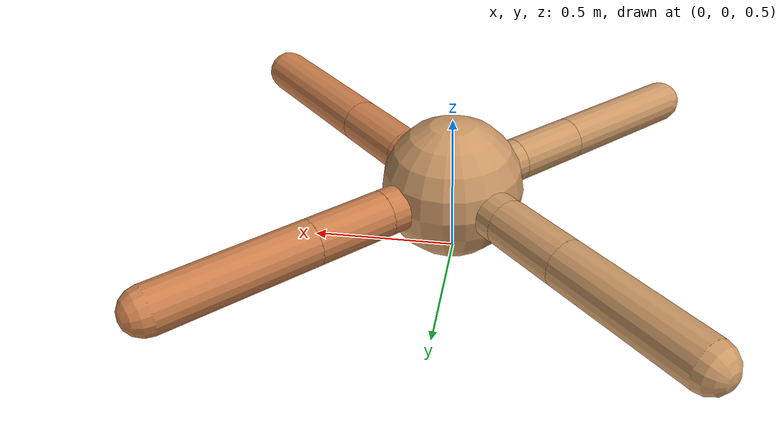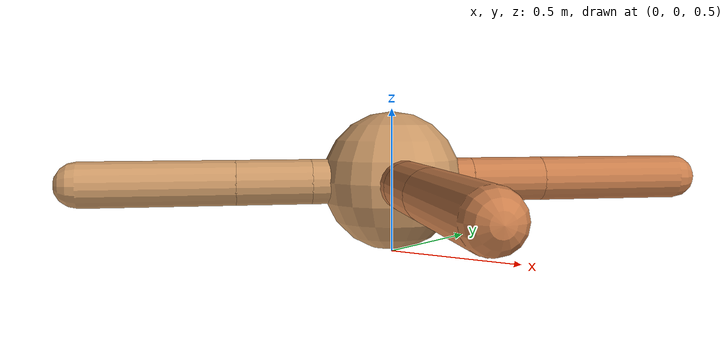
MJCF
<?xml version="1.0" ?>
<mujoco model="ant">

	<compiler angle="degree" coordinate="local" inertiafromgeom="true"/>

	<option integrator="RK4" timestep="0.01"/>

	<custom>

		<numeric data="0.0 0.0 0.55 1.0 0.0 0.0 0.0 0.0 1.0 0.0 -1.0 0.0 -1.0 0.0 1.0" name="init_qpos"/>

	</custom>

	<default>

		<joint armature="1" damping="1" limited="true"/>

		<geom conaffinity="0" condim="3" density="5.0" friction="1.5 0.1 0.1" margin="0.01" rgba="0.8 0.6 0.4 1"/>

	</default>

	<worldbody>

		<body name="torso" pos="0 0 0.75">

			<geom name="torso_geom" pos="0 0 0" size="0.24184382903138812" type="sphere"/>

			<!--joint armature="0" damping="0" limited="false" margin="0.01" name="root" pos="0 0 0" type="free"/-->

			<body name="front_left_leg" pos="0 0 0">

				<geom fromto="0 0 0 0.2 0.2 0" name="aux_1_geom" size="0.07793162426597519" type="capsule" rgba=".8 .5 .3 1"/>

				<body name="aux_1" pos="0.2 0.2 0">

					<joint axis="0 0 1" name="hip_1" pos="0.0 0.0 0.0" range="-40 40" type="hinge"/>

					<geom fromto="0 0 0 0.18450794214229482 0.18450794214229482 0" name="left_leg_geom" size="0.07793162426597519" type="capsule" rgba=".8 .5 .3 1"/>

					<body pos="0.18450794214229482 0.18450794214229482 0" name="front_left_foot">

						<joint axis="-1 1 0" name="ankle_1" pos="0.0 0.0 0.0" range="30 100" type="hinge"/>

						<geom fromto="0 0 0 0.36901588428458965 0.36901588428458965 0" name="left_ankle_geom" size="0.07793162426597519" type="capsule" rgba=".8 .5 .3 1"/>

					</body>

				</body>

			</body>

			<body name="front_right_leg" pos="0 0 0">

				<geom fromto="0 0 0 -0.2 0.2 0" name="aux_2_geom" size="0.08053448021272214" type="capsule"/>

				<body name="aux_2" pos="-0.2 0.2 0">

					<joint axis="0 0 1" name="hip_2" pos="0.0 0.0 0.0" range="-40 40" type="hinge"/>

					<geom fromto="0 0 0 -0.1869480857628014 0.1869480857628014 0" name="right_leg_geom" size="0.08053448021272214" type="capsule"/>

					<body pos="-0.1869480857628014 0.1869480857628014 0" name="front_right_foot">

						<joint axis="1 1 0" name="ankle_2" pos="0.0 0.0 0.0" range="-100 -30" type="hinge"/>

						<geom fromto="0 0 0 -0.3738961715256028 0.3738961715256028 0" name="right_ankle_geom" size="0.08053448021272214" type="capsule"/>

					</body>

				</body>

			</body>

			<body name="left_back_leg" pos="0 0 0">

				<geom fromto="0 0 0 -0.2 -0.2 0" name="aux_3_geom" size="0.07748558898198088" type="capsule"/>

				<body name="aux_3" pos="-0.2 -0.2 0">

					<joint axis="0 0 1" name="hip_3" pos="0.0 0.0 0.0" range="-40 40" type="hinge"/>

					<geom fromto="0 0 0 -0.18051594557381323 -0.18051594557381323 0" name="back_leg_geom" size="0.07748558898198088" type="capsule"/>

					<body pos="-0.18051594557381323 -0.18051594557381323 0" name="left_back_foot">

						<joint axis="-1 1 0" name="ankle_3" pos="0.0 0.0 0.0" range="-100 -30" type="hinge"/>

						<geom fromto="0 0 0 -0.36103189114762646 -0.36103189114762646 0" name="third_ankle_geom" size="0.07748558898198088" type="capsule"/>

					</body>

				</body>

			</body>

			<body name="right_back_leg" pos="0 0 0">

				<geom fromto="0 0 0 0.2 -0.2 0" name="aux_4_geom" size="0.08214904627899375" type="capsule" rgba=".8 .5 .3 1"/>

				<body name="aux_4" pos="0.2 -0.2 0">

					<joint axis="0 0 1" name="hip_4" pos="0.0 0.0 0.0" range="-40 40" type="hinge"/>

					<geom fromto="0 0 0 0.2080785472955008 -0.2080785472955008 0" name="rightback_leg_geom" size="0.08214904627899375" type="capsule" rgba=".8 .5 .3 1"/>

					<body pos="0.2080785472955008 -0.2080785472955008 0" name="right_back_foot">

						<joint axis="1 1 0" name="ankle_4" pos="0.0 0.0 0.0" range="30 100" type="hinge"/>

						<geom fromto="0 0 0 0.4161570945910016 -0.4161570945910016 0" name="fourth_ankle_geom" size="0.08214904627899375" type="capsule" rgba=".8 .5 .3 1"/>

					</body>

				</body>

			</body>

		</body>

	</worldbody>

	<actuator>

		<motor ctrllimited="true" ctrlrange="-1.0 1.0" joint="hip_4" gear="150"/>

		<motor ctrllimited="true" ctrlrange="-1.0 1.0" joint="ankle_4" gear="150"/>

		<motor ctrllimited="true" ctrlrange="-1.0 1.0" joint="hip_1" gear="150"/>

		<motor ctrllimited="true" ctrlrange="-1.0 1.0" joint="ankle_1" gear="150"/>

		<motor ctrllimited="true" ctrlrange="-1.0 1.0" joint="hip_2" gear="150"/>

		<motor ctrllimited="true" ctrlrange="-1.0 1.0" joint="ankle_2" gear="150"/>

		<motor ctrllimited="true" ctrlrange="-1.0 1.0" joint="hip_3" gear="150"/>

		<motor ctrllimited="true" ctrlrange="-1.0 1.0" joint="ankle_3" gear="150"/>

	</actuator>

</mujoco>
